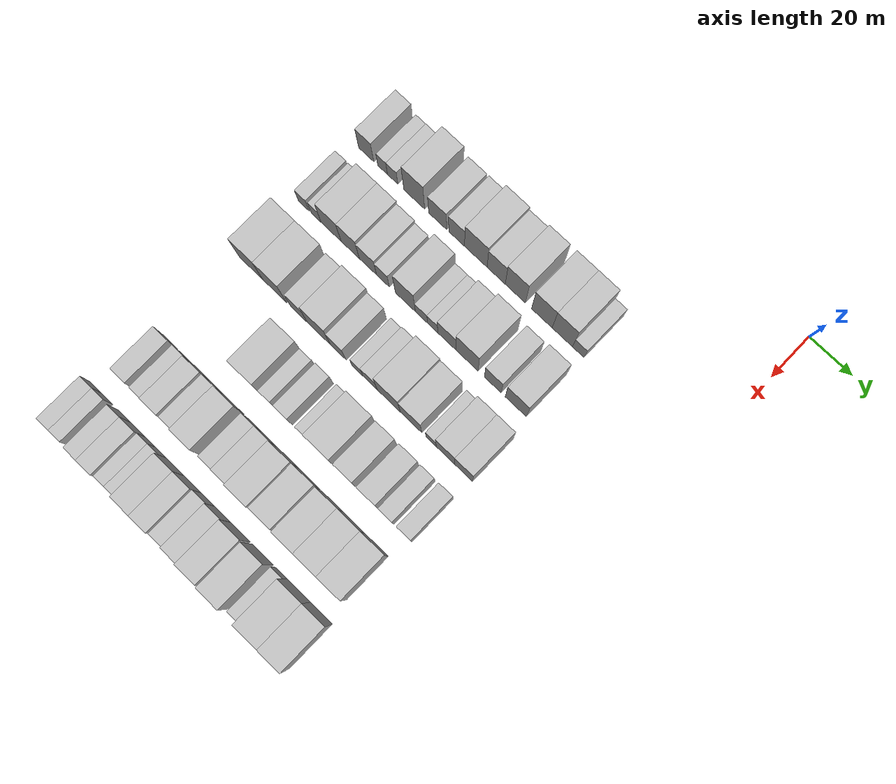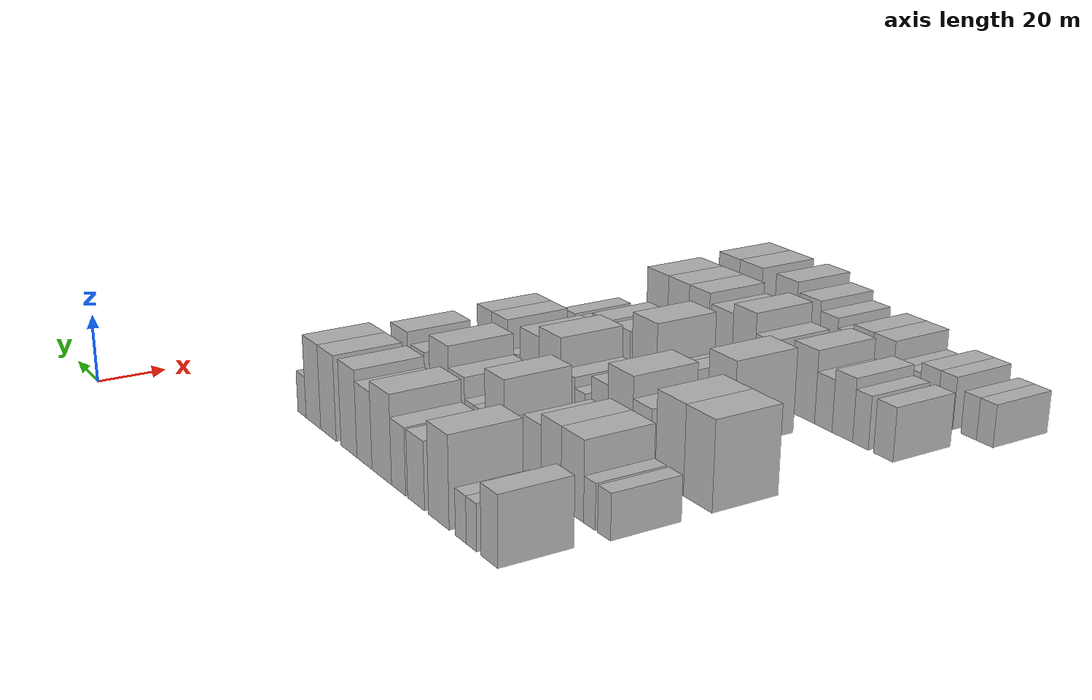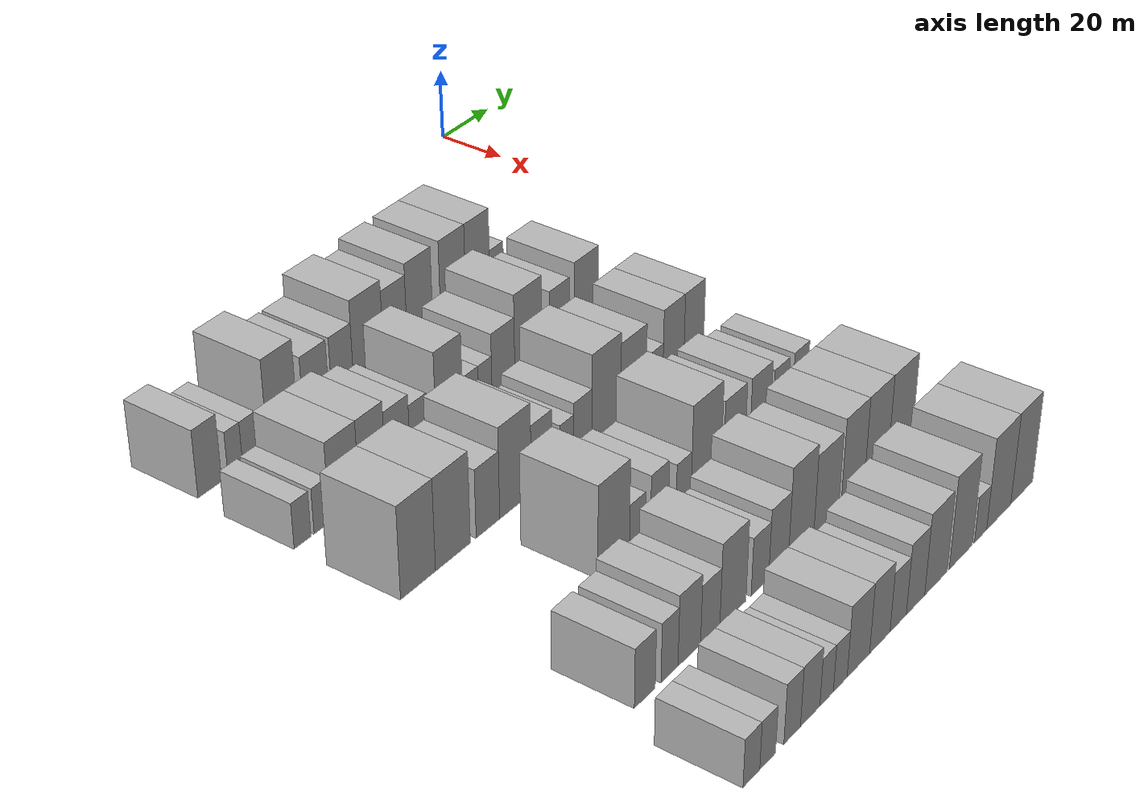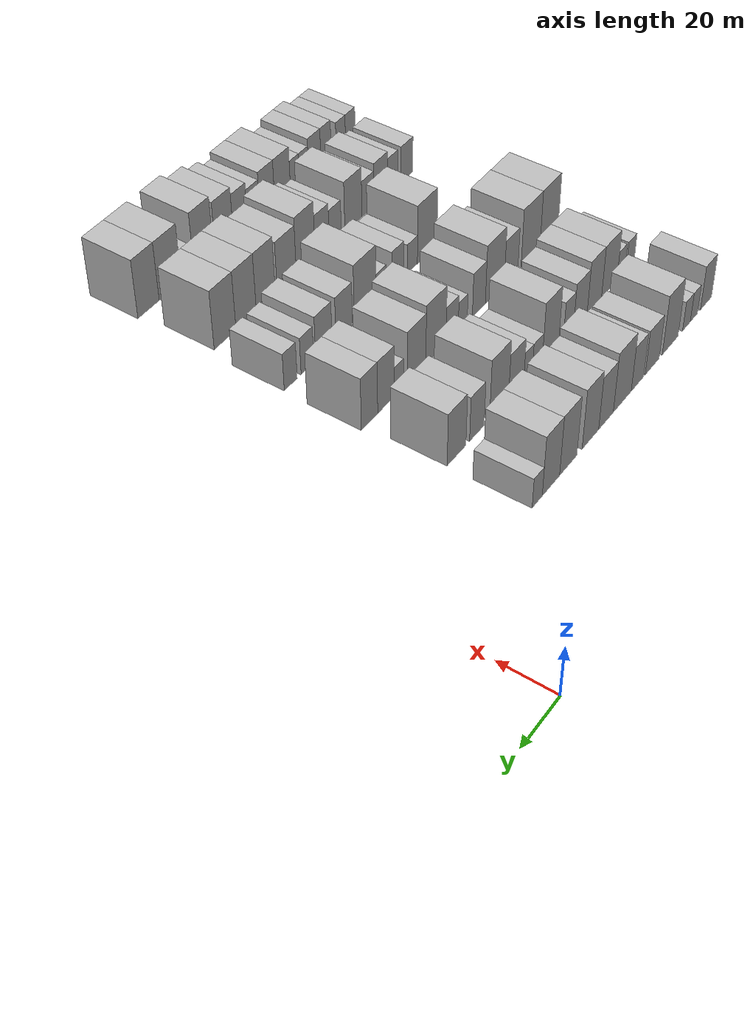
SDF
<sdf version="1.6">
 <world name="default">
  <model name="building_29">
   <static>1</static>
   <pose>50.0000 -158.0018 0 0.000000 0.000000 0.000000</pose>
   <link name="link">
    <pose>0 0 9.00 0 0 0</pose>
    <collision name="collision"><geometry><box><size>20.0000 7.6028 18.0000</size></box></geometry></collision>
    <visual name="visual">
     <cast_shadows>0</cast_shadows>
     <geometry><box><size>20.0000 7.6028 18.0000</size></box></geometry>
     <material>
      <script>
       <uri>model://HANNAS_wall/materials/scripts</uri>
       <uri>model://HANNAS_wall/materials/textures</uri>
       <name>vrc/HANNAS_wall</name>
      </script>
     </material>
    </visual>
   </link>
  </model>
  <model name="building_30">
   <static>1</static>
   <pose>50.0000 -149.7860 0 0.000000 0.000000 0.000000</pose>
   <link name="link">
    <pose>0 0 6.00 0 0 0</pose>
    <collision name="collision"><geometry><box><size>20.0000 4.8288 12.0000</size></box></geometry></collision>
    <visual name="visual">
     <cast_shadows>0</cast_shadows>
     <geometry><box><size>20.0000 4.8288 12.0000</size></box></geometry>
     <material>
      <script>
       <uri>model://HANNAS_wall/materials/scripts</uri>
       <uri>model://HANNAS_wall/materials/textures</uri>
       <name>vrc/HANNAS_wall</name>
      </script>
     </material>
    </visual>
   </link>
  </model>
  <model name="building_31">
   <static>1</static>
   <pose>50.0000 -144.7720 0 0.000000 0.000000 0.000000</pose>
   <link name="link">
    <pose>0 0 6.00 0 0 0</pose>
    <collision name="collision"><geometry><box><size>20.0000 5.1991 12.0000</size></box></geometry></collision>
    <visual name="visual">
     <cast_shadows>0</cast_shadows>
     <geometry><box><size>20.0000 5.1991 12.0000</size></box></geometry>
     <material>
      <script>
       <uri>model://HANNAS_wall/materials/scripts</uri>
       <uri>model://HANNAS_wall/materials/textures</uri>
       <name>vrc/HANNAS_wall</name>
      </script>
     </material>
    </visual>
   </link>
  </model>
  <model name="building_32">
   <static>1</static>
   <pose>50.0000 -134.0197 0 0.000000 0.000000 0.000000</pose>
   <link name="link">
    <pose>0 0 12.00 0 0 0</pose>
    <collision name="collision"><geometry><box><size>20.0000 10.3055 24.0000</size></box></geometry></collision>
    <visual name="visual">
     <cast_shadows>0</cast_shadows>
     <geometry><box><size>20.0000 10.3055 24.0000</size></box></geometry>
     <material>
      <script>
       <uri>model://HANNAS_wall/materials/scripts</uri>
       <uri>model://HANNAS_wall/materials/textures</uri>
       <name>vrc/HANNAS_wall</name>
      </script>
     </material>
    </visual>
   </link>
  </model>
  <model name="building_33">
   <static>1</static>
   <pose>50.0000 -122.4047 0 0.000000 0.000000 0.000000</pose>
   <link name="link">
    <pose>0 0 9.00 0 0 0</pose>
    <collision name="collision"><geometry><box><size>20.0000 8.9245 18.0000</size></box></geometry></collision>
    <visual name="visual">
     <cast_shadows>0</cast_shadows>
     <geometry><box><size>20.0000 8.9245 18.0000</size></box></geometry>
     <material>
      <script>
       <uri>model://HANNAS_wall/materials/scripts</uri>
       <uri>model://HANNAS_wall/materials/textures</uri>
       <name>vrc/HANNAS_wall</name>
      </script>
     </material>
    </visual>
   </link>
  </model>
  <model name="building_34">
   <static>1</static>
   <pose>50.0000 -113.0738 0 0.000000 0.000000 0.000000</pose>
   <link name="link">
    <pose>0 0 9.00 0 0 0</pose>
    <collision name="collision"><geometry><box><size>20.0000 7.7372 18.0000</size></box></geometry></collision>
    <visual name="visual">
     <cast_shadows>0</cast_shadows>
     <geometry><box><size>20.0000 7.7372 18.0000</size></box></geometry>
     <material>
      <script>
       <uri>model://HANNAS_wall/materials/scripts</uri>
       <uri>model://HANNAS_wall/materials/textures</uri>
       <name>vrc/HANNAS_wall</name>
      </script>
     </material>
    </visual>
   </link>
  </model>
  <model name="building_35">
   <static>1</static>
   <pose>50.0000 -103.7000 0 0.000000 0.000000 0.000000</pose>
   <link name="link">
    <pose>0 0 12.00 0 0 0</pose>
    <collision name="collision"><geometry><box><size>20.0000 11.0105 24.0000</size></box></geometry></collision>
    <visual name="visual">
     <cast_shadows>0</cast_shadows>
     <geometry><box><size>20.0000 11.0105 24.0000</size></box></geometry>
     <material>
      <script>
       <uri>model://HANNAS_wall/materials/scripts</uri>
       <uri>model://HANNAS_wall/materials/textures</uri>
       <name>vrc/HANNAS_wall</name>
      </script>
     </material>
    </visual>
   </link>
  </model>
  <model name="building_36">
   <static>1</static>
   <pose>50.0000 -93.7858 0 0.000000 0.000000 0.000000</pose>
   <link name="link">
    <pose>0 0 10.50 0 0 0</pose>
    <collision name="collision"><geometry><box><size>20.0000 8.8179 21.0000</size></box></geometry></collision>
    <visual name="visual">
     <cast_shadows>0</cast_shadows>
     <geometry><box><size>20.0000 8.8179 21.0000</size></box></geometry>
     <material>
      <script>
       <uri>model://HANNAS_wall/materials/scripts</uri>
       <uri>model://HANNAS_wall/materials/textures</uri>
       <name>vrc/HANNAS_wall</name>
      </script>
     </material>
    </visual>
   </link>
  </model>
  <model name="building_37">
   <static>1</static>
   <pose>50.0000 -84.5160 0 0.000000 0.000000 0.000000</pose>
   <link name="link">
    <pose>0 0 12.00 0 0 0</pose>
    <collision name="collision"><geometry><box><size>20.0000 9.7215 24.0000</size></box></geometry></collision>
    <visual name="visual">
     <cast_shadows>0</cast_shadows>
     <geometry><box><size>20.0000 9.7215 24.0000</size></box></geometry>
     <material>
      <script>
       <uri>model://HANNAS_wall/materials/scripts</uri>
       <uri>model://HANNAS_wall/materials/textures</uri>
       <name>vrc/HANNAS_wall</name>
      </script>
     </material>
    </visual>
   </link>
  </model>
  <model name="building_38">
   <static>1</static>
   <pose>50.0000 -71.7117 0 0.000000 0.000000 0.000000</pose>
   <link name="link">
    <pose>0 0 12.00 0 0 0</pose>
    <collision name="collision"><geometry><box><size>20.0000 9.8872 24.0000</size></box></geometry></collision>
    <visual name="visual">
     <cast_shadows>0</cast_shadows>
     <geometry><box><size>20.0000 9.8872 24.0000</size></box></geometry>
     <material>
      <script>
       <uri>model://HANNAS_wall/materials/scripts</uri>
       <uri>model://HANNAS_wall/materials/textures</uri>
       <name>vrc/HANNAS_wall</name>
      </script>
     </material>
    </visual>
   </link>
  </model>
  <model name="building_39">
   <static>1</static>
   <pose>50.0000 -61.9375 0 0.000000 0.000000 0.000000</pose>
   <link name="link">
    <pose>0 0 12.00 0 0 0</pose>
    <collision name="collision"><geometry><box><size>20.0000 9.6612 24.0000</size></box></geometry></collision>
    <visual name="visual">
     <cast_shadows>0</cast_shadows>
     <geometry><box><size>20.0000 9.6612 24.0000</size></box></geometry>
     <material>
      <script>
       <uri>model://HANNAS_wall/materials/scripts</uri>
       <uri>model://HANNAS_wall/materials/textures</uri>
       <name>vrc/HANNAS_wall</name>
      </script>
     </material>
    </visual>
   </link>
  </model>
  <model name="building_40">
   <static>1</static>
   <pose>50.0000 -54.3264 0 0.000000 0.000000 0.000000</pose>
   <link name="link">
    <pose>0 0 6.00 0 0 0</pose>
    <collision name="collision"><geometry><box><size>20.0000 5.5611 12.0000</size></box></geometry></collision>
    <visual name="visual">
     <cast_shadows>0</cast_shadows>
     <geometry><box><size>20.0000 5.5611 12.0000</size></box></geometry>
     <material>
      <script>
       <uri>model://HANNAS_wall/materials/scripts</uri>
       <uri>model://HANNAS_wall/materials/textures</uri>
       <name>vrc/HANNAS_wall</name>
      </script>
     </material>
    </visual>
   </link>
  </model>
  <model name="building_135">
   <static>1</static>
   <pose>79.0000 -160.5167 0 0.000000 0.000000 0.000000</pose>
   <link name="link">
    <pose>0 0 6.00 0 0 0</pose>
    <collision name="collision"><geometry><box><size>20.0000 5.4208 12.0000</size></box></geometry></collision>
    <visual name="visual">
     <cast_shadows>0</cast_shadows>
     <geometry><box><size>20.0000 5.4208 12.0000</size></box></geometry>
     <material>
      <script>
       <uri>model://HANNAS_wall/materials/scripts</uri>
       <uri>model://HANNAS_wall/materials/textures</uri>
       <name>vrc/HANNAS_wall</name>
      </script>
     </material>
    </visual>
   </link>
  </model>
  <model name="building_136">
   <static>1</static>
   <pose>79.0000 -154.3104 0 0.000000 0.000000 0.000000</pose>
   <link name="link">
    <pose>0 0 6.00 0 0 0</pose>
    <collision name="collision"><geometry><box><size>20.0000 4.9917 12.0000</size></box></geometry></collision>
    <visual name="visual">
     <cast_shadows>0</cast_shadows>
     <geometry><box><size>20.0000 4.9917 12.0000</size></box></geometry>
     <material>
      <script>
       <uri>model://HANNAS_wall/materials/scripts</uri>
       <uri>model://HANNAS_wall/materials/textures</uri>
       <name>vrc/HANNAS_wall</name>
      </script>
     </material>
    </visual>
   </link>
  </model>
  <model name="building_137">
   <static>1</static>
   <pose>79.0000 -146.8188 0 0.000000 0.000000 0.000000</pose>
   <link name="link">
    <pose>0 0 10.50 0 0 0</pose>
    <collision name="collision"><geometry><box><size>20.0000 9.9915 21.0000</size></box></geometry></collision>
    <visual name="visual">
     <cast_shadows>0</cast_shadows>
     <geometry><box><size>20.0000 9.9915 21.0000</size></box></geometry>
     <material>
      <script>
       <uri>model://HANNAS_wall/materials/scripts</uri>
       <uri>model://HANNAS_wall/materials/textures</uri>
       <name>vrc/HANNAS_wall</name>
      </script>
     </material>
    </visual>
   </link>
  </model>
  <model name="building_138">
   <static>1</static>
   <pose>79.0000 -137.2648 0 0.000000 0.000000 0.000000</pose>
   <link name="link">
    <pose>0 0 10.50 0 0 0</pose>
    <collision name="collision"><geometry><box><size>20.0000 9.1166 21.0000</size></box></geometry></collision>
    <visual name="visual">
     <cast_shadows>0</cast_shadows>
     <geometry><box><size>20.0000 9.1166 21.0000</size></box></geometry>
     <material>
      <script>
       <uri>model://HANNAS_wall/materials/scripts</uri>
       <uri>model://HANNAS_wall/materials/textures</uri>
       <name>vrc/HANNAS_wall</name>
      </script>
     </material>
    </visual>
   </link>
  </model>
  <model name="building_139">
   <static>1</static>
   <pose>79.0000 -128.4279 0 0.000000 0.000000 0.000000</pose>
   <link name="link">
    <pose>0 0 9.00 0 0 0</pose>
    <collision name="collision"><geometry><box><size>20.0000 8.5571 18.0000</size></box></geometry></collision>
    <visual name="visual">
     <cast_shadows>0</cast_shadows>
     <geometry><box><size>20.0000 8.5571 18.0000</size></box></geometry>
     <material>
      <script>
       <uri>model://HANNAS_wall/materials/scripts</uri>
       <uri>model://HANNAS_wall/materials/textures</uri>
       <name>vrc/HANNAS_wall</name>
      </script>
     </material>
    </visual>
   </link>
  </model>
  <model name="building_140">
   <static>1</static>
   <pose>79.0000 -121.0194 0 0.000000 0.000000 0.000000</pose>
   <link name="link">
    <pose>0 0 7.50 0 0 0</pose>
    <collision name="collision"><geometry><box><size>20.0000 6.2600 15.0000</size></box></geometry></collision>
    <visual name="visual">
     <cast_shadows>0</cast_shadows>
     <geometry><box><size>20.0000 6.2600 15.0000</size></box></geometry>
     <material>
      <script>
       <uri>model://HANNAS_wall/materials/scripts</uri>
       <uri>model://HANNAS_wall/materials/textures</uri>
       <name>vrc/HANNAS_wall</name>
      </script>
     </material>
    </visual>
   </link>
  </model>
  <model name="building_141">
   <static>1</static>
   <pose>79.0000 -110.0013 0 0.000000 0.000000 0.000000</pose>
   <link name="link">
    <pose>0 0 12.00 0 0 0</pose>
    <collision name="collision"><geometry><box><size>20.0000 9.7762 24.0000</size></box></geometry></collision>
    <visual name="visual">
     <cast_shadows>0</cast_shadows>
     <geometry><box><size>20.0000 9.7762 24.0000</size></box></geometry>
     <material>
      <script>
       <uri>model://HANNAS_wall/materials/scripts</uri>
       <uri>model://HANNAS_wall/materials/textures</uri>
       <name>vrc/HANNAS_wall</name>
      </script>
     </material>
    </visual>
   </link>
  </model>
  <model name="building_142">
   <static>1</static>
   <pose>79.0000 -102.1652 0 0.000000 0.000000 0.000000</pose>
   <link name="link">
    <pose>0 0 6.00 0 0 0</pose>
    <collision name="collision"><geometry><box><size>20.0000 5.8961 12.0000</size></box></geometry></collision>
    <visual name="visual">
     <cast_shadows>0</cast_shadows>
     <geometry><box><size>20.0000 5.8961 12.0000</size></box></geometry>
     <material>
      <script>
       <uri>model://HANNAS_wall/materials/scripts</uri>
       <uri>model://HANNAS_wall/materials/textures</uri>
       <name>vrc/HANNAS_wall</name>
      </script>
     </material>
    </visual>
   </link>
  </model>
  <model name="building_143">
   <static>1</static>
   <pose>79.0000 -96.7252 0 0.000000 0.000000 0.000000</pose>
   <link name="link">
    <pose>0 0 6.00 0 0 0</pose>
    <collision name="collision"><geometry><box><size>20.0000 4.9838 12.0000</size></box></geometry></collision>
    <visual name="visual">
     <cast_shadows>0</cast_shadows>
     <geometry><box><size>20.0000 4.9838 12.0000</size></box></geometry>
     <material>
      <script>
       <uri>model://HANNAS_wall/materials/scripts</uri>
       <uri>model://HANNAS_wall/materials/textures</uri>
       <name>vrc/HANNAS_wall</name>
      </script>
     </material>
    </visual>
   </link>
  </model>
  <model name="building_144">
   <static>1</static>
   <pose>79.0000 -89.8504 0 0.000000 0.000000 0.000000</pose>
   <link name="link">
    <pose>0 0 9.00 0 0 0</pose>
    <collision name="collision"><geometry><box><size>20.0000 8.7659 18.0000</size></box></geometry></collision>
    <visual name="visual">
     <cast_shadows>0</cast_shadows>
     <geometry><box><size>20.0000 8.7659 18.0000</size></box></geometry>
     <material>
      <script>
       <uri>model://HANNAS_wall/materials/scripts</uri>
       <uri>model://HANNAS_wall/materials/textures</uri>
       <name>vrc/HANNAS_wall</name>
      </script>
     </material>
    </visual>
   </link>
  </model>
  <model name="building_145">
   <static>1</static>
   <pose>79.0000 -80.1156 0 0.000000 0.000000 0.000000</pose>
   <link name="link">
    <pose>0 0 12.00 0 0 0</pose>
    <collision name="collision"><geometry><box><size>20.0000 10.7037 24.0000</size></box></geometry></collision>
    <visual name="visual">
     <cast_shadows>0</cast_shadows>
     <geometry><box><size>20.0000 10.7037 24.0000</size></box></geometry>
     <material>
      <script>
       <uri>model://HANNAS_wall/materials/scripts</uri>
       <uri>model://HANNAS_wall/materials/textures</uri>
       <name>vrc/HANNAS_wall</name>
      </script>
     </material>
    </visual>
   </link>
  </model>
  <model name="building_146">
   <static>1</static>
   <pose>79.0000 -67.7677 0 0.000000 0.000000 0.000000</pose>
   <link name="link">
    <pose>0 0 9.00 0 0 0</pose>
    <collision name="collision"><geometry><box><size>20.0000 7.9922 18.0000</size></box></geometry></collision>
    <visual name="visual">
     <cast_shadows>0</cast_shadows>
     <geometry><box><size>20.0000 7.9922 18.0000</size></box></geometry>
     <material>
      <script>
       <uri>model://HANNAS_wall/materials/scripts</uri>
       <uri>model://HANNAS_wall/materials/textures</uri>
       <name>vrc/HANNAS_wall</name>
      </script>
     </material>
    </visual>
   </link>
  </model>
  <model name="building_147">
   <static>1</static>
   <pose>79.0000 -56.7422 0 0.000000 0.000000 0.000000</pose>
   <link name="link">
    <pose>0 0 10.50 0 0 0</pose>
    <collision name="collision"><geometry><box><size>20.0000 10.0588 21.0000</size></box></geometry></collision>
    <visual name="visual">
     <cast_shadows>0</cast_shadows>
     <geometry><box><size>20.0000 10.0588 21.0000</size></box></geometry>
     <material>
      <script>
       <uri>model://HANNAS_wall/materials/scripts</uri>
       <uri>model://HANNAS_wall/materials/textures</uri>
       <name>vrc/HANNAS_wall</name>
      </script>
     </material>
    </visual>
   </link>
  </model>
  <model name="building_251">
   <static>1</static>
   <pose>108.0000 -157.4548 0 0.000000 0.000000 0.000000</pose>
   <link name="link">
    <pose>0 0 12.00 0 0 0</pose>
    <collision name="collision"><geometry><box><size>20.0000 11.5689 24.0000</size></box></geometry></collision>
    <visual name="visual">
     <cast_shadows>0</cast_shadows>
     <geometry><box><size>20.0000 11.5689 24.0000</size></box></geometry>
     <material>
      <script>
       <uri>model://HANNAS_wall/materials/scripts</uri>
       <uri>model://HANNAS_wall/materials/textures</uri>
       <name>vrc/HANNAS_wall</name>
      </script>
     </material>
    </visual>
   </link>
  </model>
  <model name="building_252">
   <static>1</static>
   <pose>108.0000 -145.7387 0 0.000000 0.000000 0.000000</pose>
   <link name="link">
    <pose>0 0 12.00 0 0 0</pose>
    <collision name="collision"><geometry><box><size>20.0000 11.8634 24.0000</size></box></geometry></collision>
    <visual name="visual">
     <cast_shadows>0</cast_shadows>
     <geometry><box><size>20.0000 11.8634 24.0000</size></box></geometry>
     <material>
      <script>
       <uri>model://HANNAS_wall/materials/scripts</uri>
       <uri>model://HANNAS_wall/materials/textures</uri>
       <name>vrc/HANNAS_wall</name>
      </script>
     </material>
    </visual>
   </link>
  </model>
  <model name="building_253">
   <static>1</static>
   <pose>108.0000 -133.6460 0 0.000000 0.000000 0.000000</pose>
   <link name="link">
    <pose>0 0 9.00 0 0 0</pose>
    <collision name="collision"><geometry><box><size>20.0000 8.3221 18.0000</size></box></geometry></collision>
    <visual name="visual">
     <cast_shadows>0</cast_shadows>
     <geometry><box><size>20.0000 8.3221 18.0000</size></box></geometry>
     <material>
      <script>
       <uri>model://HANNAS_wall/materials/scripts</uri>
       <uri>model://HANNAS_wall/materials/textures</uri>
       <name>vrc/HANNAS_wall</name>
      </script>
     </material>
    </visual>
   </link>
  </model>
  <model name="building_254">
   <static>1</static>
   <pose>108.0000 -123.7949 0 0.000000 0.000000 0.000000</pose>
   <link name="link">
    <pose>0 0 12.00 0 0 0</pose>
    <collision name="collision"><geometry><box><size>20.0000 11.3801 24.0000</size></box></geometry></collision>
    <visual name="visual">
     <cast_shadows>0</cast_shadows>
     <geometry><box><size>20.0000 11.3801 24.0000</size></box></geometry>
     <material>
      <script>
       <uri>model://HANNAS_wall/materials/scripts</uri>
       <uri>model://HANNAS_wall/materials/textures</uri>
       <name>vrc/HANNAS_wall</name>
      </script>
     </material>
    </visual>
   </link>
  </model>
  <model name="building_255">
   <static>1</static>
   <pose>108.0000 -114.2722 0 0.000000 0.000000 0.000000</pose>
   <link name="link">
    <pose>0 0 9.00 0 0 0</pose>
    <collision name="collision"><geometry><box><size>20.0000 7.6652 18.0000</size></box></geometry></collision>
    <visual name="visual">
     <cast_shadows>0</cast_shadows>
     <geometry><box><size>20.0000 7.6652 18.0000</size></box></geometry>
     <material>
      <script>
       <uri>model://HANNAS_wall/materials/scripts</uri>
       <uri>model://HANNAS_wall/materials/textures</uri>
       <name>vrc/HANNAS_wall</name>
      </script>
     </material>
    </visual>
   </link>
  </model>
  <model name="building_256">
   <static>1</static>
   <pose>108.0000 -104.8288 0 0.000000 0.000000 0.000000</pose>
   <link name="link">
    <pose>0 0 6.00 0 0 0</pose>
    <collision name="collision"><geometry><box><size>20.0000 5.2217 12.0000</size></box></geometry></collision>
    <visual name="visual">
     <cast_shadows>0</cast_shadows>
     <geometry><box><size>20.0000 5.2217 12.0000</size></box></geometry>
     <material>
      <script>
       <uri>model://HANNAS_wall/materials/scripts</uri>
       <uri>model://HANNAS_wall/materials/textures</uri>
       <name>vrc/HANNAS_wall</name>
      </script>
     </material>
    </visual>
   </link>
  </model>
  <model name="building_257">
   <static>1</static>
   <pose>108.0000 -98.7149 0 0.000000 0.000000 0.000000</pose>
   <link name="link">
    <pose>0 0 7.50 0 0 0</pose>
    <collision name="collision"><geometry><box><size>20.0000 7.0061 15.0000</size></box></geometry></collision>
    <visual name="visual">
     <cast_shadows>0</cast_shadows>
     <geometry><box><size>20.0000 7.0061 15.0000</size></box></geometry>
     <material>
      <script>
       <uri>model://HANNAS_wall/materials/scripts</uri>
       <uri>model://HANNAS_wall/materials/textures</uri>
       <name>vrc/HANNAS_wall</name>
      </script>
     </material>
    </visual>
   </link>
  </model>
  <model name="building_258">
   <static>1</static>
   <pose>108.0000 -89.5911 0 0.000000 0.000000 0.000000</pose>
   <link name="link">
    <pose>0 0 12.00 0 0 0</pose>
    <collision name="collision"><geometry><box><size>20.0000 11.2415 24.0000</size></box></geometry></collision>
    <visual name="visual">
     <cast_shadows>0</cast_shadows>
     <geometry><box><size>20.0000 11.2415 24.0000</size></box></geometry>
     <material>
      <script>
       <uri>model://HANNAS_wall/materials/scripts</uri>
       <uri>model://HANNAS_wall/materials/textures</uri>
       <name>vrc/HANNAS_wall</name>
      </script>
     </material>
    </visual>
   </link>
  </model>
  <model name="building_259">
   <static>1</static>
   <pose>108.0000 -78.8529 0 0.000000 0.000000 0.000000</pose>
   <link name="link">
    <pose>0 0 10.50 0 0 0</pose>
    <collision name="collision"><geometry><box><size>20.0000 10.2349 21.0000</size></box></geometry></collision>
    <visual name="visual">
     <cast_shadows>0</cast_shadows>
     <geometry><box><size>20.0000 10.2349 21.0000</size></box></geometry>
     <material>
      <script>
       <uri>model://HANNAS_wall/materials/scripts</uri>
       <uri>model://HANNAS_wall/materials/textures</uri>
       <name>vrc/HANNAS_wall</name>
      </script>
     </material>
    </visual>
   </link>
  </model>
  <model name="building_260">
   <static>1</static>
   <pose>108.0000 -69.2990 0 0.000000 0.000000 0.000000</pose>
   <link name="link">
    <pose>0 0 6.00 0 0 0</pose>
    <collision name="collision"><geometry><box><size>20.0000 4.8729 12.0000</size></box></geometry></collision>
    <visual name="visual">
     <cast_shadows>0</cast_shadows>
     <geometry><box><size>20.0000 4.8729 12.0000</size></box></geometry>
     <material>
      <script>
       <uri>model://HANNAS_wall/materials/scripts</uri>
       <uri>model://HANNAS_wall/materials/textures</uri>
       <name>vrc/HANNAS_wall</name>
      </script>
     </material>
    </visual>
   </link>
  </model>
  <model name="building_261">
   <static>1</static>
   <pose>108.0000 -62.4692 0 0.000000 0.000000 0.000000</pose>
   <link name="link">
    <pose>0 0 10.50 0 0 0</pose>
    <collision name="collision"><geometry><box><size>20.0000 8.7868 21.0000</size></box></geometry></collision>
    <visual name="visual">
     <cast_shadows>0</cast_shadows>
     <geometry><box><size>20.0000 8.7868 21.0000</size></box></geometry>
     <material>
      <script>
       <uri>model://HANNAS_wall/materials/scripts</uri>
       <uri>model://HANNAS_wall/materials/textures</uri>
       <name>vrc/HANNAS_wall</name>
      </script>
     </material>
    </visual>
   </link>
  </model>
  <model name="building_262">
   <static>1</static>
   <pose>108.0000 -53.8224 0 0.000000 0.000000 0.000000</pose>
   <link name="link">
    <pose>0 0 10.50 0 0 0</pose>
    <collision name="collision"><geometry><box><size>20.0000 8.5068 21.0000</size></box></geometry></collision>
    <visual name="visual">
     <cast_shadows>0</cast_shadows>
     <geometry><box><size>20.0000 8.5068 21.0000</size></box></geometry>
     <material>
      <script>
       <uri>model://HANNAS_wall/materials/scripts</uri>
       <uri>model://HANNAS_wall/materials/textures</uri>
       <name>vrc/HANNAS_wall</name>
      </script>
     </material>
    </visual>
   </link>
  </model>
  <model name="building_361">
   <static>1</static>
   <pose>137.0000 -128.1576 0 0.000000 0.000000 0.000000</pose>
   <link name="link">
    <pose>0 0 12.00 0 0 0</pose>
    <collision name="collision"><geometry><box><size>20.0000 11.5500 24.0000</size></box></geometry></collision>
    <visual name="visual">
     <cast_shadows>0</cast_shadows>
     <geometry><box><size>20.0000 11.5500 24.0000</size></box></geometry>
     <material>
      <script>
       <uri>model://HANNAS_wall/materials/scripts</uri>
       <uri>model://HANNAS_wall/materials/textures</uri>
       <name>vrc/HANNAS_wall</name>
      </script>
     </material>
    </visual>
   </link>
  </model>
  <model name="building_362">
   <static>1</static>
   <pose>137.0000 -119.4312 0 0.000000 0.000000 0.000000</pose>
   <link name="link">
    <pose>0 0 6.00 0 0 0</pose>
    <collision name="collision"><geometry><box><size>20.0000 5.9027 12.0000</size></box></geometry></collision>
    <visual name="visual">
     <cast_shadows>0</cast_shadows>
     <geometry><box><size>20.0000 5.9027 12.0000</size></box></geometry>
     <material>
      <script>
       <uri>model://HANNAS_wall/materials/scripts</uri>
       <uri>model://HANNAS_wall/materials/textures</uri>
       <name>vrc/HANNAS_wall</name>
      </script>
     </material>
    </visual>
   </link>
  </model>
  <model name="building_363">
   <static>1</static>
   <pose>137.0000 -111.0608 0 0.000000 0.000000 0.000000</pose>
   <link name="link">
    <pose>0 0 7.50 0 0 0</pose>
    <collision name="collision"><geometry><box><size>20.0000 6.8381 15.0000</size></box></geometry></collision>
    <visual name="visual">
     <cast_shadows>0</cast_shadows>
     <geometry><box><size>20.0000 6.8381 15.0000</size></box></geometry>
     <material>
      <script>
       <uri>model://HANNAS_wall/materials/scripts</uri>
       <uri>model://HANNAS_wall/materials/textures</uri>
       <name>vrc/HANNAS_wall</name>
      </script>
     </material>
    </visual>
   </link>
  </model>
  <model name="building_364">
   <static>1</static>
   <pose>137.0000 -101.7193 0 0.000000 0.000000 0.000000</pose>
   <link name="link">
    <pose>0 0 6.00 0 0 0</pose>
    <collision name="collision"><geometry><box><size>20.0000 5.8451 12.0000</size></box></geometry></collision>
    <visual name="visual">
     <cast_shadows>0</cast_shadows>
     <geometry><box><size>20.0000 5.8451 12.0000</size></box></geometry>
     <material>
      <script>
       <uri>model://HANNAS_wall/materials/scripts</uri>
       <uri>model://HANNAS_wall/materials/textures</uri>
       <name>vrc/HANNAS_wall</name>
      </script>
     </material>
    </visual>
   </link>
  </model>
  <model name="building_365">
   <static>1</static>
   <pose>137.0000 -92.8112 0 0.000000 0.000000 0.000000</pose>
   <link name="link">
    <pose>0 0 12.00 0 0 0</pose>
    <collision name="collision"><geometry><box><size>20.0000 11.9710 24.0000</size></box></geometry></collision>
    <visual name="visual">
     <cast_shadows>0</cast_shadows>
     <geometry><box><size>20.0000 11.9710 24.0000</size></box></geometry>
     <material>
      <script>
       <uri>model://HANNAS_wall/materials/scripts</uri>
       <uri>model://HANNAS_wall/materials/textures</uri>
       <name>vrc/HANNAS_wall</name>
      </script>
     </material>
    </visual>
   </link>
  </model>
  <model name="building_366">
   <static>1</static>
   <pose>137.0000 -81.3700 0 0.000000 0.000000 0.000000</pose>
   <link name="link">
    <pose>0 0 9.00 0 0 0</pose>
    <collision name="collision"><geometry><box><size>20.0000 8.9116 18.0000</size></box></geometry></collision>
    <visual name="visual">
     <cast_shadows>0</cast_shadows>
     <geometry><box><size>20.0000 8.9116 18.0000</size></box></geometry>
     <material>
      <script>
       <uri>model://HANNAS_wall/materials/scripts</uri>
       <uri>model://HANNAS_wall/materials/textures</uri>
       <name>vrc/HANNAS_wall</name>
      </script>
     </material>
    </visual>
   </link>
  </model>
  <model name="building_367">
   <static>1</static>
   <pose>137.0000 -70.5863 0 0.000000 0.000000 0.000000</pose>
   <link name="link">
    <pose>0 0 9.00 0 0 0</pose>
    <collision name="collision"><geometry><box><size>20.0000 8.6557 18.0000</size></box></geometry></collision>
    <visual name="visual">
     <cast_shadows>0</cast_shadows>
     <geometry><box><size>20.0000 8.6557 18.0000</size></box></geometry>
     <material>
      <script>
       <uri>model://HANNAS_wall/materials/scripts</uri>
       <uri>model://HANNAS_wall/materials/textures</uri>
       <name>vrc/HANNAS_wall</name>
      </script>
     </material>
    </visual>
   </link>
  </model>
  <model name="building_368">
   <static>1</static>
   <pose>137.0000 -61.9792 0 0.000000 0.000000 0.000000</pose>
   <link name="link">
    <pose>0 0 7.50 0 0 0</pose>
    <collision name="collision"><geometry><box><size>20.0000 6.5586 15.0000</size></box></geometry></collision>
    <visual name="visual">
     <cast_shadows>0</cast_shadows>
     <geometry><box><size>20.0000 6.5586 15.0000</size></box></geometry>
     <material>
      <script>
       <uri>model://HANNAS_wall/materials/scripts</uri>
       <uri>model://HANNAS_wall/materials/textures</uri>
       <name>vrc/HANNAS_wall</name>
      </script>
     </material>
    </visual>
   </link>
  </model>
  <model name="building_369">
   <static>1</static>
   <pose>137.0000 -53.4200 0 0.000000 0.000000 0.000000</pose>
   <link name="link">
    <pose>0 0 7.50 0 0 0</pose>
    <collision name="collision"><geometry><box><size>20.0000 6.5598 15.0000</size></box></geometry></collision>
    <visual name="visual">
     <cast_shadows>0</cast_shadows>
     <geometry><box><size>20.0000 6.5598 15.0000</size></box></geometry>
     <material>
      <script>
       <uri>model://HANNAS_wall/materials/scripts</uri>
       <uri>model://HANNAS_wall/materials/textures</uri>
       <name>vrc/HANNAS_wall</name>
      </script>
     </material>
    </visual>
   </link>
  </model>
  <model name="building_476">
   <static>1</static>
   <pose>166.0000 -159.0073 0 0.000000 0.000000 0.000000</pose>
   <link name="link">
    <pose>0 0 7.50 0 0 0</pose>
    <collision name="collision"><geometry><box><size>20.0000 7.2323 15.0000</size></box></geometry></collision>
    <visual name="visual">
     <cast_shadows>0</cast_shadows>
     <geometry><box><size>20.0000 7.2323 15.0000</size></box></geometry>
     <material>
      <script>
       <uri>model://HANNAS_wall/materials/scripts</uri>
       <uri>model://HANNAS_wall/materials/textures</uri>
       <name>vrc/HANNAS_wall</name>
      </script>
     </material>
    </visual>
   </link>
  </model>
  <model name="building_477">
   <static>1</static>
   <pose>166.0000 -150.3671 0 0.000000 0.000000 0.000000</pose>
   <link name="link">
    <pose>0 0 7.50 0 0 0</pose>
    <collision name="collision"><geometry><box><size>20.0000 6.0481 15.0000</size></box></geometry></collision>
    <visual name="visual">
     <cast_shadows>0</cast_shadows>
     <geometry><box><size>20.0000 6.0481 15.0000</size></box></geometry>
     <material>
      <script>
       <uri>model://HANNAS_wall/materials/scripts</uri>
       <uri>model://HANNAS_wall/materials/textures</uri>
       <name>vrc/HANNAS_wall</name>
      </script>
     </material>
    </visual>
   </link>
  </model>
  <model name="building_478">
   <static>1</static>
   <pose>166.0000 -143.2572 0 0.000000 0.000000 0.000000</pose>
   <link name="link">
    <pose>0 0 9.00 0 0 0</pose>
    <collision name="collision"><geometry><box><size>20.0000 8.1717 18.0000</size></box></geometry></collision>
    <visual name="visual">
     <cast_shadows>0</cast_shadows>
     <geometry><box><size>20.0000 8.1717 18.0000</size></box></geometry>
     <material>
      <script>
       <uri>model://HANNAS_wall/materials/scripts</uri>
       <uri>model://HANNAS_wall/materials/textures</uri>
       <name>vrc/HANNAS_wall</name>
      </script>
     </material>
    </visual>
   </link>
  </model>
  <model name="building_479">
   <static>1</static>
   <pose>166.0000 -135.6115 0 0.000000 0.000000 0.000000</pose>
   <link name="link">
    <pose>0 0 7.50 0 0 0</pose>
    <collision name="collision"><geometry><box><size>20.0000 7.1196 15.0000</size></box></geometry></collision>
    <visual name="visual">
     <cast_shadows>0</cast_shadows>
     <geometry><box><size>20.0000 7.1196 15.0000</size></box></geometry>
     <material>
      <script>
       <uri>model://HANNAS_wall/materials/scripts</uri>
       <uri>model://HANNAS_wall/materials/textures</uri>
       <name>vrc/HANNAS_wall</name>
      </script>
     </material>
    </visual>
   </link>
  </model>
  <model name="building_480">
   <static>1</static>
   <pose>166.0000 -127.1234 0 0.000000 0.000000 0.000000</pose>
   <link name="link">
    <pose>0 0 10.50 0 0 0</pose>
    <collision name="collision"><geometry><box><size>20.0000 9.8567 21.0000</size></box></geometry></collision>
    <visual name="visual">
     <cast_shadows>0</cast_shadows>
     <geometry><box><size>20.0000 9.8567 21.0000</size></box></geometry>
     <material>
      <script>
       <uri>model://HANNAS_wall/materials/scripts</uri>
       <uri>model://HANNAS_wall/materials/textures</uri>
       <name>vrc/HANNAS_wall</name>
      </script>
     </material>
    </visual>
   </link>
  </model>
  <model name="building_481">
   <static>1</static>
   <pose>166.0000 -116.7883 0 0.000000 0.000000 0.000000</pose>
   <link name="link">
    <pose>0 0 7.50 0 0 0</pose>
    <collision name="collision"><geometry><box><size>20.0000 6.8135 15.0000</size></box></geometry></collision>
    <visual name="visual">
     <cast_shadows>0</cast_shadows>
     <geometry><box><size>20.0000 6.8135 15.0000</size></box></geometry>
     <material>
      <script>
       <uri>model://HANNAS_wall/materials/scripts</uri>
       <uri>model://HANNAS_wall/materials/textures</uri>
       <name>vrc/HANNAS_wall</name>
      </script>
     </material>
    </visual>
   </link>
  </model>
  <model name="building_482">
   <static>1</static>
   <pose>166.0000 -109.4651 0 0.000000 0.000000 0.000000</pose>
   <link name="link">
    <pose>0 0 9.00 0 0 0</pose>
    <collision name="collision"><geometry><box><size>20.0000 7.8329 18.0000</size></box></geometry></collision>
    <visual name="visual">
     <cast_shadows>0</cast_shadows>
     <geometry><box><size>20.0000 7.8329 18.0000</size></box></geometry>
     <material>
      <script>
       <uri>model://HANNAS_wall/materials/scripts</uri>
       <uri>model://HANNAS_wall/materials/textures</uri>
       <name>vrc/HANNAS_wall</name>
      </script>
     </material>
    </visual>
   </link>
  </model>
  <model name="building_483">
   <static>1</static>
   <pose>166.0000 -100.3923 0 0.000000 0.000000 0.000000</pose>
   <link name="link">
    <pose>0 0 12.00 0 0 0</pose>
    <collision name="collision"><geometry><box><size>20.0000 10.3126 24.0000</size></box></geometry></collision>
    <visual name="visual">
     <cast_shadows>0</cast_shadows>
     <geometry><box><size>20.0000 10.3126 24.0000</size></box></geometry>
     <material>
      <script>
       <uri>model://HANNAS_wall/materials/scripts</uri>
       <uri>model://HANNAS_wall/materials/textures</uri>
       <name>vrc/HANNAS_wall</name>
      </script>
     </material>
    </visual>
   </link>
  </model>
  <model name="building_484">
   <static>1</static>
   <pose>166.0000 -90.0931 0 0.000000 0.000000 0.000000</pose>
   <link name="link">
    <pose>0 0 10.50 0 0 0</pose>
    <collision name="collision"><geometry><box><size>20.0000 10.2858 21.0000</size></box></geometry></collision>
    <visual name="visual">
     <cast_shadows>0</cast_shadows>
     <geometry><box><size>20.0000 10.2858 21.0000</size></box></geometry>
     <material>
      <script>
       <uri>model://HANNAS_wall/materials/scripts</uri>
       <uri>model://HANNAS_wall/materials/textures</uri>
       <name>vrc/HANNAS_wall</name>
      </script>
     </material>
    </visual>
   </link>
  </model>
  <model name="building_485">
   <static>1</static>
   <pose>166.0000 -78.9527 0 0.000000 0.000000 0.000000</pose>
   <link name="link">
    <pose>0 0 12.00 0 0 0</pose>
    <collision name="collision"><geometry><box><size>20.0000 9.9950 24.0000</size></box></geometry></collision>
    <visual name="visual">
     <cast_shadows>0</cast_shadows>
     <geometry><box><size>20.0000 9.9950 24.0000</size></box></geometry>
     <material>
      <script>
       <uri>model://HANNAS_wall/materials/scripts</uri>
       <uri>model://HANNAS_wall/materials/textures</uri>
       <name>vrc/HANNAS_wall</name>
      </script>
     </material>
    </visual>
   </link>
  </model>
  <model name="building_486">
   <static>1</static>
   <pose>166.0000 -68.7304 0 0.000000 0.000000 0.000000</pose>
   <link name="link">
    <pose>0 0 12.00 0 0 0</pose>
    <collision name="collision"><geometry><box><size>20.0000 10.4494 24.0000</size></box></geometry></collision>
    <visual name="visual">
     <cast_shadows>0</cast_shadows>
     <geometry><box><size>20.0000 10.4494 24.0000</size></box></geometry>
     <material>
      <script>
       <uri>model://HANNAS_wall/materials/scripts</uri>
       <uri>model://HANNAS_wall/materials/textures</uri>
       <name>vrc/HANNAS_wall</name>
      </script>
     </material>
    </visual>
   </link>
  </model>
  <model name="building_487">
   <static>1</static>
   <pose>166.0000 -58.0152 0 0.000000 0.000000 0.000000</pose>
   <link name="link">
    <pose>0 0 12.00 0 0 0</pose>
    <collision name="collision"><geometry><box><size>20.0000 10.9810 24.0000</size></box></geometry></collision>
    <visual name="visual">
     <cast_shadows>0</cast_shadows>
     <geometry><box><size>20.0000 10.9810 24.0000</size></box></geometry>
     <material>
      <script>
       <uri>model://HANNAS_wall/materials/scripts</uri>
       <uri>model://HANNAS_wall/materials/textures</uri>
       <name>vrc/HANNAS_wall</name>
      </script>
     </material>
    </visual>
   </link>
  </model>
  <model name="building_587">
   <static>1</static>
   <pose>195.0000 -166.0226 0 0.000000 0.000000 0.000000</pose>
   <link name="link">
    <pose>0 0 6.00 0 0 0</pose>
    <collision name="collision"><geometry><box><size>20.0000 5.8881 12.0000</size></box></geometry></collision>
    <visual name="visual">
     <cast_shadows>0</cast_shadows>
     <geometry><box><size>20.0000 5.8881 12.0000</size></box></geometry>
     <material>
      <script>
       <uri>model://HANNAS_wall/materials/scripts</uri>
       <uri>model://HANNAS_wall/materials/textures</uri>
       <name>vrc/HANNAS_wall</name>
      </script>
     </material>
    </visual>
   </link>
  </model>
  <model name="building_588">
   <static>1</static>
   <pose>195.0000 -160.2589 0 0.000000 0.000000 0.000000</pose>
   <link name="link">
    <pose>0 0 6.00 0 0 0</pose>
    <collision name="collision"><geometry><box><size>20.0000 5.6392 12.0000</size></box></geometry></collision>
    <visual name="visual">
     <cast_shadows>0</cast_shadows>
     <geometry><box><size>20.0000 5.6392 12.0000</size></box></geometry>
     <material>
      <script>
       <uri>model://HANNAS_wall/materials/scripts</uri>
       <uri>model://HANNAS_wall/materials/textures</uri>
       <name>vrc/HANNAS_wall</name>
      </script>
     </material>
    </visual>
   </link>
  </model>
  <model name="building_589">
   <static>1</static>
   <pose>195.0000 -151.4041 0 0.000000 0.000000 0.000000</pose>
   <link name="link">
    <pose>0 0 7.50 0 0 0</pose>
    <collision name="collision"><geometry><box><size>20.0000 6.0705 15.0000</size></box></geometry></collision>
    <visual name="visual">
     <cast_shadows>0</cast_shadows>
     <geometry><box><size>20.0000 6.0705 15.0000</size></box></geometry>
     <material>
      <script>
       <uri>model://HANNAS_wall/materials/scripts</uri>
       <uri>model://HANNAS_wall/materials/textures</uri>
       <name>vrc/HANNAS_wall</name>
      </script>
     </material>
    </visual>
   </link>
  </model>
  <model name="building_590">
   <static>1</static>
   <pose>195.0000 -144.7511 0 0.000000 0.000000 0.000000</pose>
   <link name="link">
    <pose>0 0 7.50 0 0 0</pose>
    <collision name="collision"><geometry><box><size>20.0000 7.2355 15.0000</size></box></geometry></collision>
    <visual name="visual">
     <cast_shadows>0</cast_shadows>
     <geometry><box><size>20.0000 7.2355 15.0000</size></box></geometry>
     <material>
      <script>
       <uri>model://HANNAS_wall/materials/scripts</uri>
       <uri>model://HANNAS_wall/materials/textures</uri>
       <name>vrc/HANNAS_wall</name>
      </script>
     </material>
    </visual>
   </link>
  </model>
  <model name="building_591">
   <static>1</static>
   <pose>195.0000 -138.5633 0 0.000000 0.000000 0.000000</pose>
   <link name="link">
    <pose>0 0 6.00 0 0 0</pose>
    <collision name="collision"><geometry><box><size>20.0000 5.1401 12.0000</size></box></geometry></collision>
    <visual name="visual">
     <cast_shadows>0</cast_shadows>
     <geometry><box><size>20.0000 5.1401 12.0000</size></box></geometry>
     <material>
      <script>
       <uri>model://HANNAS_wall/materials/scripts</uri>
       <uri>model://HANNAS_wall/materials/textures</uri>
       <name>vrc/HANNAS_wall</name>
      </script>
     </material>
    </visual>
   </link>
  </model>
  <model name="building_592">
   <static>1</static>
   <pose>195.0000 -133.3397 0 0.000000 0.000000 0.000000</pose>
   <link name="link">
    <pose>0 0 6.00 0 0 0</pose>
    <collision name="collision"><geometry><box><size>20.0000 5.3071 12.0000</size></box></geometry></collision>
    <visual name="visual">
     <cast_shadows>0</cast_shadows>
     <geometry><box><size>20.0000 5.3071 12.0000</size></box></geometry>
     <material>
      <script>
       <uri>model://HANNAS_wall/materials/scripts</uri>
       <uri>model://HANNAS_wall/materials/textures</uri>
       <name>vrc/HANNAS_wall</name>
      </script>
     </material>
    </visual>
   </link>
  </model>
  <model name="building_593">
   <static>1</static>
   <pose>195.0000 -126.2616 0 0.000000 0.000000 0.000000</pose>
   <link name="link">
    <pose>0 0 9.00 0 0 0</pose>
    <collision name="collision"><geometry><box><size>20.0000 8.8492 18.0000</size></box></geometry></collision>
    <visual name="visual">
     <cast_shadows>0</cast_shadows>
     <geometry><box><size>20.0000 8.8492 18.0000</size></box></geometry>
     <material>
      <script>
       <uri>model://HANNAS_wall/materials/scripts</uri>
       <uri>model://HANNAS_wall/materials/textures</uri>
       <name>vrc/HANNAS_wall</name>
      </script>
     </material>
    </visual>
   </link>
  </model>
  <model name="building_594">
   <static>1</static>
   <pose>195.0000 -117.7233 0 0.000000 0.000000 0.000000</pose>
   <link name="link">
    <pose>0 0 9.00 0 0 0</pose>
    <collision name="collision"><geometry><box><size>20.0000 8.2274 18.0000</size></box></geometry></collision>
    <visual name="visual">
     <cast_shadows>0</cast_shadows>
     <geometry><box><size>20.0000 8.2274 18.0000</size></box></geometry>
     <material>
      <script>
       <uri>model://HANNAS_wall/materials/scripts</uri>
       <uri>model://HANNAS_wall/materials/textures</uri>
       <name>vrc/HANNAS_wall</name>
      </script>
     </material>
    </visual>
   </link>
  </model>
  <model name="building_595">
   <static>1</static>
   <pose>195.0000 -110.2640 0 0.000000 0.000000 0.000000</pose>
   <link name="link">
    <pose>0 0 7.50 0 0 0</pose>
    <collision name="collision"><geometry><box><size>20.0000 6.6912 15.0000</size></box></geometry></collision>
    <visual name="visual">
     <cast_shadows>0</cast_shadows>
     <geometry><box><size>20.0000 6.6912 15.0000</size></box></geometry>
     <material>
      <script>
       <uri>model://HANNAS_wall/materials/scripts</uri>
       <uri>model://HANNAS_wall/materials/textures</uri>
       <name>vrc/HANNAS_wall</name>
      </script>
     </material>
    </visual>
   </link>
  </model>
  <model name="building_596">
   <static>1</static>
   <pose>195.0000 -103.0603 0 0.000000 0.000000 0.000000</pose>
   <link name="link">
    <pose>0 0 9.00 0 0 0</pose>
    <collision name="collision"><geometry><box><size>20.0000 7.7161 18.0000</size></box></geometry></collision>
    <visual name="visual">
     <cast_shadows>0</cast_shadows>
     <geometry><box><size>20.0000 7.7161 18.0000</size></box></geometry>
     <material>
      <script>
       <uri>model://HANNAS_wall/materials/scripts</uri>
       <uri>model://HANNAS_wall/materials/textures</uri>
       <name>vrc/HANNAS_wall</name>
      </script>
     </material>
    </visual>
   </link>
  </model>
  <model name="building_597">
   <static>1</static>
   <pose>195.0000 -94.4004 0 0.000000 0.000000 0.000000</pose>
   <link name="link">
    <pose>0 0 10.50 0 0 0</pose>
    <collision name="collision"><geometry><box><size>20.0000 9.6037 21.0000</size></box></geometry></collision>
    <visual name="visual">
     <cast_shadows>0</cast_shadows>
     <geometry><box><size>20.0000 9.6037 21.0000</size></box></geometry>
     <material>
      <script>
       <uri>model://HANNAS_wall/materials/scripts</uri>
       <uri>model://HANNAS_wall/materials/textures</uri>
       <name>vrc/HANNAS_wall</name>
      </script>
     </material>
    </visual>
   </link>
  </model>
  <model name="building_598">
   <static>1</static>
   <pose>195.0000 -83.5134 0 0.000000 0.000000 0.000000</pose>
   <link name="link">
    <pose>0 0 12.00 0 0 0</pose>
    <collision name="collision"><geometry><box><size>20.0000 10.1704 24.0000</size></box></geometry></collision>
    <visual name="visual">
     <cast_shadows>0</cast_shadows>
     <geometry><box><size>20.0000 10.1704 24.0000</size></box></geometry>
     <material>
      <script>
       <uri>model://HANNAS_wall/materials/scripts</uri>
       <uri>model://HANNAS_wall/materials/textures</uri>
       <name>vrc/HANNAS_wall</name>
      </script>
     </material>
    </visual>
   </link>
  </model>
  <model name="building_599">
   <static>1</static>
   <pose>195.0000 -74.6829 0 0.000000 0.000000 0.000000</pose>
   <link name="link">
    <pose>0 0 6.00 0 0 0</pose>
    <collision name="collision"><geometry><box><size>20.0000 5.4905 12.0000</size></box></geometry></collision>
    <visual name="visual">
     <cast_shadows>0</cast_shadows>
     <geometry><box><size>20.0000 5.4905 12.0000</size></box></geometry>
     <material>
      <script>
       <uri>model://HANNAS_wall/materials/scripts</uri>
       <uri>model://HANNAS_wall/materials/textures</uri>
       <name>vrc/HANNAS_wall</name>
      </script>
     </material>
    </visual>
   </link>
  </model>
  <model name="building_600">
   <static>1</static>
   <pose>195.0000 -66.3596 0 0.000000 0.000000 0.000000</pose>
   <link name="link">
    <pose>0 0 12.00 0 0 0</pose>
    <collision name="collision"><geometry><box><size>20.0000 11.1562 24.0000</size></box></geometry></collision>
    <visual name="visual">
     <cast_shadows>0</cast_shadows>
     <geometry><box><size>20.0000 11.1562 24.0000</size></box></geometry>
     <material>
      <script>
       <uri>model://HANNAS_wall/materials/scripts</uri>
       <uri>model://HANNAS_wall/materials/textures</uri>
       <name>vrc/HANNAS_wall</name>
      </script>
     </material>
    </visual>
   </link>
  </model>
  <model name="building_601">
   <static>1</static>
   <pose>195.0000 -55.5495 0 0.000000 0.000000 0.000000</pose>
   <link name="link">
    <pose>0 0 12.00 0 0 0</pose>
    <collision name="collision"><geometry><box><size>20.0000 10.4638 24.0000</size></box></geometry></collision>
    <visual name="visual">
     <cast_shadows>0</cast_shadows>
     <geometry><box><size>20.0000 10.4638 24.0000</size></box></geometry>
     <material>
      <script>
       <uri>model://HANNAS_wall/materials/scripts</uri>
       <uri>model://HANNAS_wall/materials/textures</uri>
       <name>vrc/HANNAS_wall</name>
      </script>
     </material>
    </visual>
   </link>
  </model>
 </world>
</sdf>
